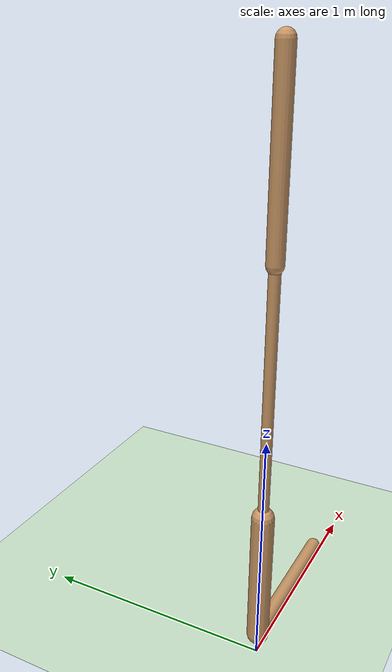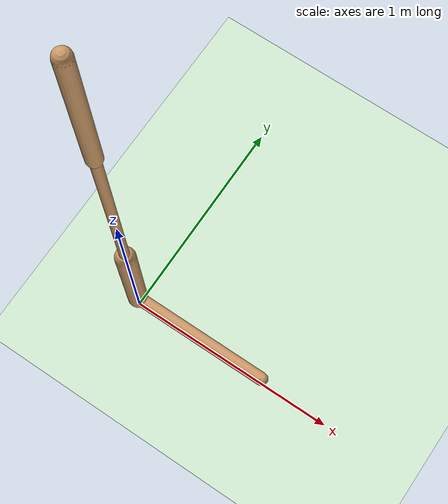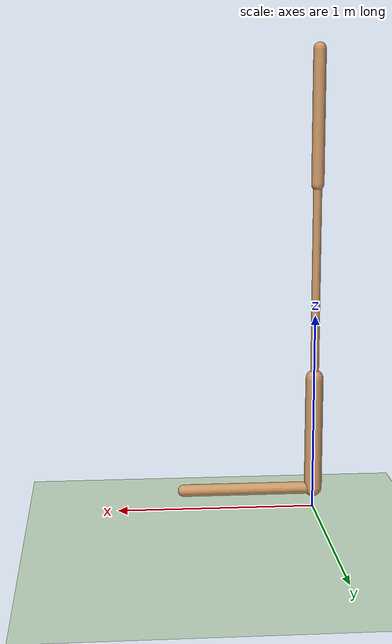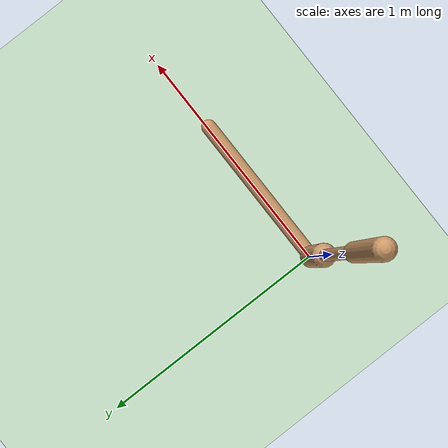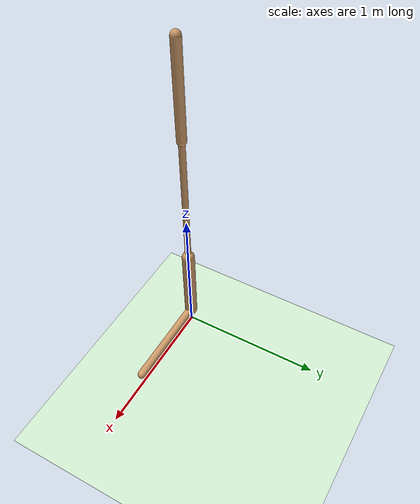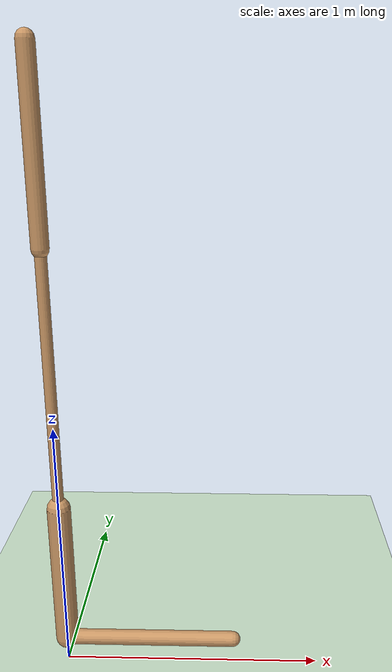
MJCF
<mujoco model="walker2d">
  <compiler angle="degree" inertiafromgeom="true" />
  <default>
    <joint armature="0.01" damping=".1" limited="true" />
    <geom conaffinity="0" condim="3" contype="1" density="1000" friction=".7 .1 .1" rgba="0.8 0.6 .4 1" />
  </default>
  <option integrator="RK4" timestep="0.002" />
  <worldbody>
    <light cutoff="100" diffuse="1 1 1" dir="-0 0 -1.3" directional="true" exponent="1" pos="0 0 1.3" specular=".1 .1 .1" />
    <geom conaffinity="1" condim="3" name="floor" pos="0 0 0" rgba="0.8 0.9 0.8 1" size="40 40 40" type="plane" material="MatPlane" />
    <body name="torso" pos="0 0 1.9870332539081574">
      <camera name="track" mode="trackcom" pos="0 -5 -1.25" xyaxes="1 0 0 0 0 1" />
      <joint armature="0" axis="1 0 0" damping="0" limited="false" name="rootx" pos="0 0 -1.25" stiffness="0" type="slide" />
      <joint armature="0" axis="0 0 1" damping="0" limited="false" name="rootz" pos="0 0 -1.25" ref="1.25" stiffness="0" type="slide" />
      <joint armature="0" axis="0 1 0" damping="0" limited="false" name="rooty" pos="0 0 0" stiffness="0" type="hinge" />
      <geom friction="0.9" name="torso_geom" size="0.03172094002366066 0.32761552929878235" type="capsule" />
      <body name="thigh" pos="0 0 -0.32761552929878235">
        <joint axis="0 -1 0" name="thigh_joint" pos="0 0 0" range="-150 0" type="hinge" />
        <site name="torso_thigh_site" pos="0 0 0" size="0.01" type="sphere" rgba="1 0 0 0.5" />
        <geom friction="0.9" pos="0 0 -0.4910915493965149" name="thigh_geom" size="0.021452873945236206 0.4910915493965149" type="capsule" />
        <body name="leg" pos="0 0 -1.2708004117012024">
          <joint axis="0 -1 0" name="leg_joint" pos="0 0 0.2886173129081726" range="-150 0" type="hinge" />
          <site name="thigh_leg_site" pos="0 0 0.25" size="0.01" type="sphere" rgba="1 0 0 0.5" />
          <geom friction="0.9" name="leg_geom" size="0.04490511491894722 0.2886173129081726" type="capsule" />
          <body name="foot" pos="0.6644923090934753 0 -0.3886173129081726">
            <joint axis="0 -1 0" name="foot_joint" pos="-0.6644923090934753 0 0.1" range="-45 45" type="hinge" />
            <site name="leg_foot_site" pos="-0.2 0 0.1" size="0.01" type="sphere" rgba="1 0 0 0.5" />
            <geom friction="0.9" pos="-0.33224615454673767 0 0.1" quat="0.70710678118654757 0 -0.70710678118654746 0" name="foot_geom" size="0.030451808124780655 0.33224615454673767" type="capsule" />
          </body>
        </body>
      </body>

      <body name="thigh_left" pos="0 0 -0.32761552929878235">
        <joint axis="0 -1 0" name="thigh_left_joint" pos="0 0 0" range="-150 0" type="hinge" />
        <site name="torso_thigh_left_site" pos="0 0 0" size="0.01" type="sphere" rgba="1 0 0 0.5" />
        <geom friction="0.9" name="thigh_left_geom" rgba=".7 .3 .6 1" size="0.021452873945236206 0.4910915493965149" pos="0 0 -0.4910915493965149" type="capsule" />
        <body name="leg_left" pos="0 0 -1.2708004117012024">
          <joint axis="0 -1 0" name="leg_left_joint" pos="0 0 0.2886173129081726" range="-150 0" type="hinge" />
          <site name="thigh_leg_left_site" pos="0 0 0.25" size="0.01" type="sphere" rgba="1 0 0 0.5" />
          <geom friction="0.9" name="leg_left_geom" rgba=".7 .3 .6 1" size="0.04490511491894722 0.2886173129081726" type="capsule" />
          <body name="foot_left" pos="0.6644923090934753 0 -0.3886173129081726">
            <joint axis="0 -1 0" name="foot_left_joint" pos="-0.6644923090934753 0 0.1" range="-45 45" type="hinge" />
            <site name="leg_foot_left_site" pos="-0.2 0 0.1" size="0.01" type="sphere" rgba="1 0 0 0.5" />
            <geom friction="1.9" name="foot_left_geom" rgba=".7 .3 .6 1" size="0.030451808124780655 0.33224615454673767" pos="-0.33224615454673767 0 0.1" type="capsule" quat="0.70710678118654757 0 -0.70710678118654746 0" />
          </body>
        </body>
      </body>
    </body>
  </worldbody>
  <actuator>

    <motor ctrllimited="true" ctrlrange="-1.0 1.0" gear="40.180089145742706" joint="thigh_joint" />
    <motor ctrllimited="true" ctrlrange="-1.0 1.0" gear="145.49699104267478" joint="leg_joint" />
    <motor ctrllimited="true" ctrlrange="-1.0 1.0" gear="85.58223650442015" joint="foot_joint" />
    <motor ctrllimited="true" ctrlrange="-1.0 1.0" gear="40.180089145742706" joint="thigh_left_joint" />
    <motor ctrllimited="true" ctrlrange="-1.0 1.0" gear="145.49699104267478" joint="leg_left_joint" />
    <motor ctrllimited="true" ctrlrange="-1.0 1.0" gear="85.58223650442015" joint="foot_left_joint" />

  </actuator>
    <asset>
        <texture type="skybox" builtin="gradient" rgb1=".4 .5 .6" rgb2="0 0 0" width="100" height="100" />
        <texture builtin="flat" height="1278" mark="cross" markrgb="1 1 1" name="texgeom" random="0.01" rgb1="0.8 0.6 0.4" rgb2="0.8 0.6 0.4" type="cube" width="127" />
        <texture builtin="checker" height="100" name="texplane" rgb1="0 0 0" rgb2="0.8 0.8 0.8" type="2d" width="100" />
        <material name="MatPlane" reflectance="0.5" shininess="1" specular="1" texrepeat="60 60" texture="texplane" />
        <material name="geom" texture="texgeom" texuniform="true" />
    </asset>

  <sensor>
    <force site="torso_thigh_site" name="torso_thigh_sensor" />
    <force site="thigh_leg_site" name="thigh_leg_sensor" />
    <force site="leg_foot_site" name="leg_foot_sensor" />
    <force site="torso_thigh_left_site" name="torso_thigh_left_sensor" />
    <force site="thigh_leg_left_site" name="thigh_leg_left_sensor" />
    <force site="leg_foot_left_site" name="leg_foot_left_sensor" />
  </sensor>
</mujoco>
